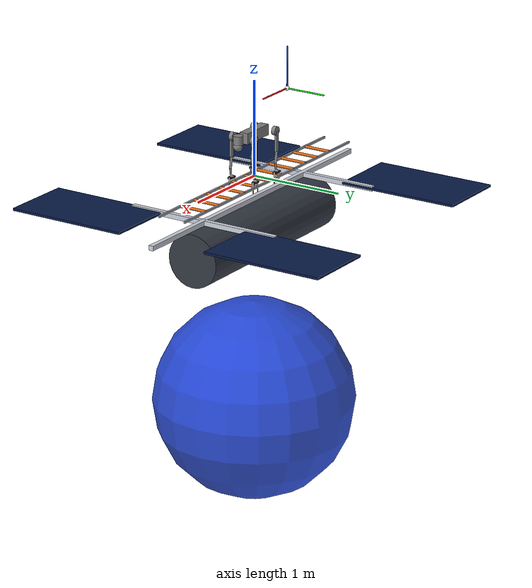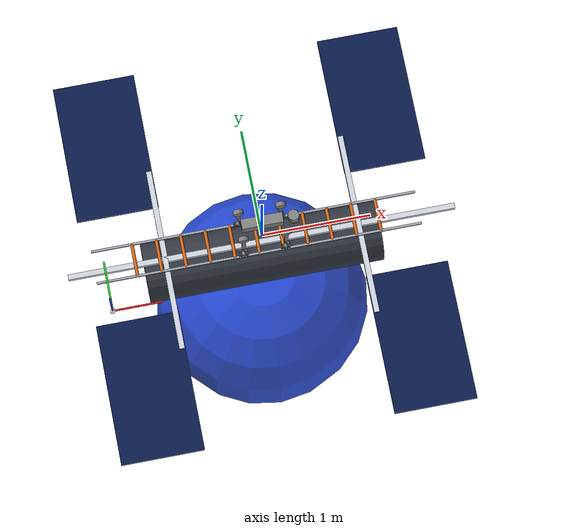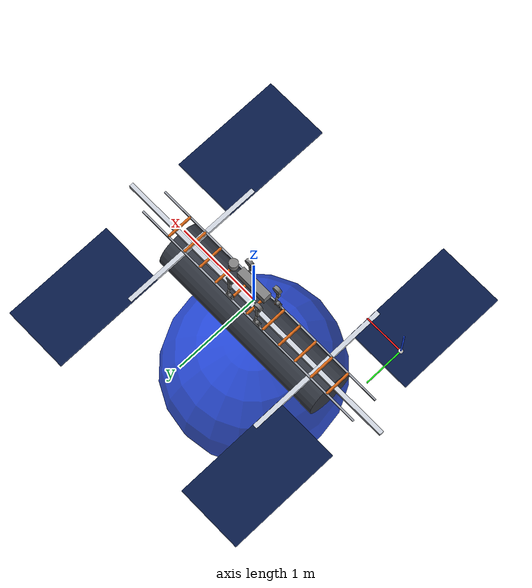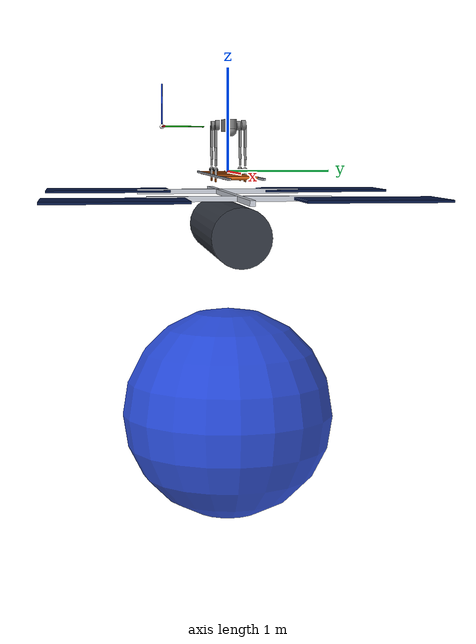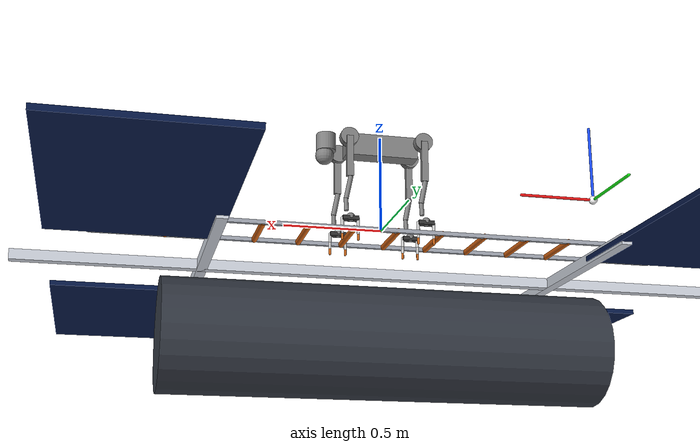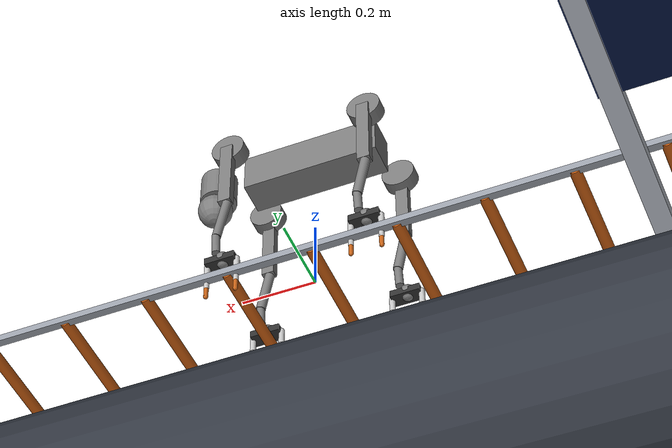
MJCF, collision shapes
<mujoco model="go2 hill-frame rung-radius r150">
  <option timestep="0.002" gravity="0 0 -7.848" cone="elliptic" impratio="100" />

  <!-- This file is intended to live in:
       ~/00Dissertation/code/hill_frame_experiment/
       and uses the local go2_hill.xml copy with meshdir="../assets". -->
  <include file="go2_hill.xml" />

  <statistic center="0 0 0.15" extent="3.5" />

  <visual>
    <headlight diffuse="0.7 0.7 0.7"
               ambient="0.25 0.25 0.25"
               specular="0.15 0.15 0.15" />
    <rgba haze="0.02 0.02 0.04 1" />
    <global azimuth="-130" elevation="-18" />
  </visual>

  <asset>
    <texture type="skybox"
             builtin="gradient"
             rgb1="0.005 0.005 0.015"
             rgb2="0 0 0"
             width="512"
             height="3072" />

    <material name="station_white" rgba="0.80 0.82 0.86 1" />
    <material name="station_dark"  rgba="0.20 0.22 0.26 1" />
    <material name="solar_blue"    rgba="0.03 0.10 0.28 1" />
    <material name="earth_blue"    rgba="0.04 0.20 0.85 0.85" />
    <material name="ladder_metal"  rgba="0.62 0.64 0.68 1" />
    <material name="rung_orange"   rgba="0.85 0.40 0.08 1" />
  </asset>

  <worldbody>
    <light pos="0 0 5" dir="0 0 -1" directional="true" />

    <!-- Overview camera for the full Hill-frame visual scene. -->
    <camera name="hill_overview"
            pos="4.2 -4.2 2.3"
            xyaxes="0.707 0.707 0  -0.265 0.265 0.927"
            mode="fixed" />

    <body name="earth_reference" pos="0 0 -2.4">
      <geom name="earth_visual"
            type="sphere"
            size="1.05"
            material="earth_blue"
            contype="0"
            conaffinity="0"
            group="0" />
    </body>

    <!-- Hill-frame visual axes. -->
    <body name="hill_frame_axes" pos="-1.45 -0.55 0.45">
      <site name="hill_origin" type="sphere" size="0.025" rgba="1 1 1 1" />
      <site name="hill_x_axis" type="capsule"
            fromto="0 0 0 0.45 0 0" size="0.008" rgba="1 0.1 0.1 1" />
      <site name="hill_y_axis" type="capsule"
            fromto="0 0 0 0 0.45 0" size="0.008" rgba="0.1 1 0.1 1" />
      <site name="hill_z_axis" type="capsule"
            fromto="0 0 0 0 0 0.45" size="0.008" rgba="0.1 0.3 1 1" />
    </body>

    <!-- Station-like visual reference inspired by the supplied image.
         It is intentionally non-colliding and does not alter robot dynamics. -->
    <body name="orbital_station_visual" pos="0 0 -0.58">
      <geom name="station_core"
            type="cylinder"
            size="0.28 1.10"
            zaxis="1 0 0"
            material="station_dark"
            contype="0"
            conaffinity="0"
            group="0" />

      <geom name="station_truss_main"
            type="box"
            size="1.80 0.025 0.025"
            pos="0 0 0.35"
            material="station_white"
            contype="0"
            conaffinity="0"
            group="0" />

      <geom name="station_truss_cross_left"
            type="box"
            size="0.025 0.85 0.025"
            pos="-0.90 0 0.35"
            material="station_white"
            contype="0"
            conaffinity="0"
            group="0" />

      <geom name="station_truss_cross_right"
            type="box"
            size="0.025 0.85 0.025"
            pos="0.90 0 0.35"
            material="station_white"
            contype="0"
            conaffinity="0"
            group="0" />

      <geom name="solar_left_front"
            type="box"
            size="0.38 0.65 0.012"
            pos="-1.25 1.15 0.35"
            material="solar_blue"
            contype="0"
            conaffinity="0"
            group="0" />

      <geom name="solar_left_back"
            type="box"
            size="0.38 0.65 0.012"
            pos="-1.25 -1.15 0.35"
            material="solar_blue"
            contype="0"
            conaffinity="0"
            group="0" />

      <geom name="solar_right_front"
            type="box"
            size="0.38 0.65 0.012"
            pos="1.25 1.15 0.35"
            material="solar_blue"
            contype="0"
            conaffinity="0"
            group="0" />

      <geom name="solar_right_back"
            type="box"
            size="0.38 0.65 0.012"
            pos="1.25 -1.15 0.35"
            material="solar_blue"
            contype="0"
            conaffinity="0"
            group="0" />
    </body>

    <!-- Physical ladder. Geometry and rung spacing are unchanged from the baseline. -->
    <body name="ladder_structure" pos="-0.05 0 0">
      <geom name="ladder_rail_front"
            type="box"
            size="1.5 0.01 0.01"
            pos="0 0.15 -0.04"
            material="ladder_metal" />

      <geom name="ladder_rail_back"
            type="box"
            size="1.5 0.01 0.01"
            pos="0 -0.15 -0.04"
            material="ladder_metal" />

      <geom name="rung_1"  type="cylinder" size="0.0150 0.15" pos="-1.125 0 -0.04" zaxis="0 1 0" material="rung_orange" />
      <geom name="rung_2"  type="cylinder" size="0.0150 0.15" pos="-0.900 0 -0.04" zaxis="0 1 0" material="rung_orange" />
      <geom name="rung_3"  type="cylinder" size="0.0150 0.15" pos="-0.675 0 -0.04" zaxis="0 1 0" material="rung_orange" />
      <geom name="rung_4"  type="cylinder" size="0.0150 0.15" pos="-0.450 0 -0.04" zaxis="0 1 0" material="rung_orange" />
      <geom name="rung_5"  type="cylinder" size="0.0150 0.15" pos="-0.225 0 -0.04" zaxis="0 1 0" material="rung_orange" />
      <geom name="rung_6"  type="cylinder" size="0.0150 0.15" pos="0.000 0 -0.04"  zaxis="0 1 0" material="rung_orange" />
      <geom name="rung_7"  type="cylinder" size="0.0150 0.15" pos="0.225 0 -0.04"  zaxis="0 1 0" material="rung_orange" />
      <geom name="rung_8"  type="cylinder" size="0.0150 0.15" pos="0.450 0 -0.04"  zaxis="0 1 0" material="rung_orange" />
      <geom name="rung_9"  type="cylinder" size="0.0150 0.15" pos="0.675 0 -0.04"  zaxis="0 1 0" material="rung_orange" />
      <geom name="rung_10" type="cylinder" size="0.0150 0.15" pos="0.900 0 -0.04"  zaxis="0 1 0" material="rung_orange" />
      <geom name="rung_11" type="cylinder" size="0.0150 0.15" pos="1.125 0 -0.04"  zaxis="0 1 0" material="rung_orange" />
    </body>
  </worldbody>
</mujoco>

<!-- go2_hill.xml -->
<mujoco model="go2">
  <compiler angle="radian" meshdir="../assets" autolimits="true"/>

  <option cone="elliptic" impratio="100"/>

  <default>
    <default class="go2">
      <geom friction="0.6" margin="0.001" condim="1"/>
      <joint axis="0 1 0" damping="2" armature="0.01" frictionloss="0.2"/>
      <motor ctrlrange="-23.7 23.7"/>
      <default class="abduction">
        <joint axis="1 0 0" range="-1.0472 1.0472"/>
      </default>
      <default class="hip">
        <default class="front_hip">
          <joint range="-1.5708 3.4907"/>
        </default>
        <default class="back_hip">
          <joint range="-0.5236 4.5379"/>
        </default>
      </default>
      <default class="knee">
        <joint range="-2.7227 -0.83776"/>
        <motor ctrlrange="-45.43 45.43"/>
      </default>
      <default class="visual">
        <geom type="mesh" contype="0" conaffinity="0" group="2"/>
      </default>
      <default class="collision">
        <geom group="3"/>
        <default class="foot">
          <geom size="0.022" pos="-0.002 0 -0.213" priority="1" solimp="0.015 1 0.022" condim="6"
            friction="0.8 0.02 0.01"/>
        </default>
      </default>
    </default>
  </default>

  <asset>
    <material name="metal" rgba=".9 .95 .95 1"/>
    <material name="black" rgba="0 0 0 1"/>
    <material name="white" rgba="1 1 1 1"/>
    <material name="gray" rgba="0.671705 0.692426 0.774270 1"/>

    <mesh file="base_0.obj"/>
    <mesh file="base_1.obj"/>
    <mesh file="base_2.obj"/>
    <mesh file="base_3.obj"/>
    <mesh file="base_4.obj"/>
    <mesh file="hip_0.obj"/>
    <mesh file="hip_1.obj"/>
    <mesh file="thigh_0.obj"/>
    <mesh file="thigh_1.obj"/>
    <mesh file="thigh_mirror_0.obj"/>
    <mesh file="thigh_mirror_1.obj"/>
    <mesh file="calf_0.obj"/>
    <mesh file="calf_1.obj"/>
    <mesh file="calf_mirror_0.obj"/>
    <mesh file="calf_mirror_1.obj"/>
    <mesh file="foot.obj"/>
  </asset>

  <worldbody>
    <body name="base" pos="0 0 0.445" childclass="go2">
      <inertial pos="0.021112 0 -0.005366" quat="-0.000543471 0.713435 -0.00173769 0.700719" mass="6.921"
        diaginertia="0.107027 0.0980771 0.0244531"/>
      <freejoint/>
      <geom mesh="base_0" material="black" class="visual"/>
      <geom mesh="base_1" material="black" class="visual"/>
      <geom mesh="base_2" material="black" class="visual"/>
      <geom mesh="base_3" material="white" class="visual"/>
      <geom mesh="base_4" material="gray" class="visual"/>
      <geom size="0.1881 0.04675 0.057" type="box" class="collision"/>
      <geom size="0.05 0.045" pos="0.285 0 0.01" type="cylinder" class="collision"/>
      <geom size="0.047" pos="0.293 0 -0.06" class="collision"/>
      <site name="imu" pos="-0.02557 0 0.04232"/>
      <body name="FL_hip" pos="0.1934 0.0465 0">
        <inertial pos="-0.0054 0.00194 -0.000105" quat="0.497014 0.499245 0.505462 0.498237" mass="0.678"
          diaginertia="0.00088403 0.000596003 0.000479967"/>
        <joint name="FL_hip_joint" class="abduction"/>
        <geom mesh="hip_0" material="metal" class="visual"/>
        <geom mesh="hip_1" material="gray" class="visual"/>
        <geom size="0.046 0.02" pos="0 0.08 0" quat="1 1 0 0" type="cylinder" class="collision"/>
        <body name="FL_thigh" pos="0 0.0955 0">
          <inertial pos="-0.00374 -0.0223 -0.0327" quat="0.829533 0.0847635 -0.0200632 0.551623" mass="1.152"
            diaginertia="0.00594973 0.00584149 0.000878787"/>
          <joint name="FL_thigh_joint" class="front_hip"/>
          <geom mesh="thigh_0" material="metal" class="visual"/>
          <geom mesh="thigh_1" material="gray" class="visual"/>
          <geom size="0.1065 0.01225 0.017" pos="0 0 -0.1065" quat="0.707107 0 0.707107 0" type="box"
            class="collision"/>
          <body name="FL_calf" pos="0 0 -0.213">
            <inertial pos="0.00629595 -0.000622121 -0.141417" quat="0.710672 0.00154099 -0.00450087 0.703508"
              mass="0.241352" diaginertia="0.0014901 0.00146356 5.31397e-05"/>
            <joint name="FL_calf_joint" class="knee"/>
            <geom mesh="calf_0" material="gray" class="visual"/>
            <geom mesh="calf_1" material="black" class="visual"/>
            <geom size="0.012 0.06" pos="0.008 0 -0.06" quat="0.994493 0 -0.104807 0" type="cylinder"
              class="collision"/>
            <geom size="0.011 0.0325" pos="0.02 0 -0.148" quat="0.999688 0 0.0249974 0" type="cylinder"
              class="collision"/>
            <geom pos="0 0 -0.213" mesh="foot" class="visual" material="black"/>
            <geom name="FL" class="foot"/>

            <body name="FL_gripper_palm" pos="0 0 -0.22" quat="1 0 0 0">
              <geom name="fl_palm_v" type="box" size="0.04 0.02 0.01" rgba="0.2 0.2 0.2 1" class="visual"/>
              <body name="fl_finger_L1" pos="0.04 0 0">
                <joint name="fl_g_L1_j" type="hinge" axis="0 1 0" range="0 1.57" damping="0.1" frictionloss="0.01" armature="0.001"/>
                <geom type="capsule" size="0.008 0.02" pos="0 0 -0.02" quat="1 0 0 0" rgba="0.8 0.8 0.8 1"/>
                <body name="fl_finger_L2" pos="0 0 -0.04">
                  <joint name="fl_g_L2_j" type="hinge" axis="0 1 0" range="0 1.57" damping="0.1" frictionloss="0.01" armature="0.001"/>
                  <geom type="capsule" size="0.007 0.018" pos="0 0 -0.018" quat="1 0 0 0" rgba="0.8 0.8 0.8 1"/>
                  <body name="fl_finger_L3" pos="0 0 -0.036">
                    <joint name="fl_g_L3_j" type="hinge" axis="0 1 0" range="0 1.57" damping="0.1" frictionloss="0.01" armature="0.001"/>
                    <geom type="capsule" size="0.006 0.015" pos="0 0 -0.015" quat="1 0 0 0" rgba="0.8 0.4 0.1 1"/>
                  </body>
                </body>
              </body>
              <body name="fl_finger_R1" pos="-0.04 0 0">
                <joint name="fl_g_R1_j" type="hinge" axis="0 -1 0" range="0 1.57" damping="0.1" frictionloss="0.01" armature="0.001"/>
                <geom type="capsule" size="0.008 0.02" pos="0 0 -0.02" quat="1 0 0 0" rgba="0.8 0.8 0.8 1"/>
                <body name="fl_finger_R2" pos="0 0 -0.04">
                  <joint name="fl_g_R2_j" type="hinge" axis="0 -1 0" range="0 1.57" damping="0.1" frictionloss="0.01" armature="0.001"/>
                  <geom type="capsule" size="0.007 0.018" pos="0 0 -0.018" quat="1 0 0 0" rgba="0.8 0.8 0.8 1"/>
                  <body name="fl_finger_R3" pos="0 0 -0.036">
                    <joint name="fl_g_R3_j" type="hinge" axis="0 -1 0" range="0 1.57" damping="0.1" frictionloss="0.01" armature="0.001"/>
                    <geom type="capsule" size="0.006 0.015" pos="0 0 -0.015" quat="1 0 0 0" rgba="0.8 0.4 0.1 1"/>
                  </body>
                </body>
              </body>
            </body>

          </body>
        </body>
      </body>
      <body name="FR_hip" pos="0.1934 -0.0465 0">
        <inertial pos="-0.0054 -0.00194 -0.000105" quat="0.498237 0.505462 0.499245 0.497014" mass="0.678"
          diaginertia="0.00088403 0.000596003 0.000479967"/>
        <joint name="FR_hip_joint" class="abduction"/>
        <geom mesh="hip_0" material="metal" class="visual" quat="4.63268e-05 1 0 0"/>
        <geom mesh="hip_1" material="gray" class="visual" quat="4.63268e-05 1 0 0"/>
        <geom size="0.046 0.02" pos="0 -0.08 0" quat="0.707107 0.707107 0 0" type="cylinder" class="collision"/>
        <body name="FR_thigh" pos="0 -0.0955 0">
          <inertial pos="-0.00374 0.0223 -0.0327" quat="0.551623 -0.0200632 0.0847635 0.829533" mass="1.152"
            diaginertia="0.00594973 0.00584149 0.000878787"/>
          <joint name="FR_thigh_joint" class="front_hip"/>
          <geom mesh="thigh_mirror_0" material="metal" class="visual"/>
          <geom mesh="thigh_mirror_1" material="gray" class="visual"/>
          <geom size="0.1065 0.01225 0.017" pos="0 0 -0.1065" quat="0.707107 0 0.707107 0" type="box"
            class="collision"/>
          <body name="FR_calf" pos="0 0 -0.213">
            <inertial pos="0.00629595 0.000622121 -0.141417" quat="0.703508 -0.00450087 0.00154099 0.710672"
              mass="0.241352" diaginertia="0.0014901 0.00146356 5.31397e-05"/>
            <joint name="FR_calf_joint" class="knee"/>
            <geom mesh="calf_mirror_0" material="gray" class="visual"/>
            <geom mesh="calf_mirror_1" material="black" class="visual"/>
            <geom size="0.013 0.06" pos="0.01 0 -0.06" quat="0.995004 0 -0.0998334 0" type="cylinder"
              class="collision"/>
            <geom size="0.011 0.0325" pos="0.02 0 -0.148" quat="0.999688 0 0.0249974 0" type="cylinder"
              class="collision"/>
            <geom pos="0 0 -0.213" mesh="foot" class="visual" material="black"/>
            <geom name="FR" class="foot"/>

            <body name="FR_gripper_palm" pos="0 0 -0.22" quat="1 0 0 0">
              <geom name="fr_palm_v" type="box" size="0.04 0.02 0.01" rgba="0.2 0.2 0.2 1" class="visual"/>
              <body name="fr_finger_L1" pos="0.04 0 0">
                <joint name="fr_g_L1_j" type="hinge" axis="0 1 0" range="0 1.57" damping="0.1" frictionloss="0.01" armature="0.001"/>
                <geom type="capsule" size="0.008 0.02" pos="0 0 -0.02" quat="1 0 0 0" rgba="0.8 0.8 0.8 1"/>
                <body name="fr_finger_L2" pos="0 0 -0.04">
                  <joint name="fr_g_L2_j" type="hinge" axis="0 1 0" range="0 1.57" damping="0.1" frictionloss="0.01" armature="0.001"/>
                  <geom type="capsule" size="0.007 0.018" pos="0 0 -0.018" quat="1 0 0 0" rgba="0.8 0.8 0.8 1"/>
                  <body name="fr_finger_L3" pos="0 0 -0.036">
                    <joint name="fr_g_L3_j" type="hinge" axis="0 1 0" range="0 1.57" damping="0.1" frictionloss="0.01" armature="0.001"/>
                    <geom type="capsule" size="0.006 0.015" pos="0 0 -0.015" quat="1 0 0 0" rgba="0.8 0.4 0.1 1"/>
                  </body>
                </body>
              </body>
              <body name="fr_finger_R1" pos="-0.04 0 0">
                <joint name="fr_g_R1_j" type="hinge" axis="0 -1 0" range="0 1.57" damping="0.1" frictionloss="0.01" armature="0.001"/>
                <geom type="capsule" size="0.008 0.02" pos="0 0 -0.02" quat="1 0 0 0" rgba="0.8 0.8 0.8 1"/>
                <body name="fr_finger_R2" pos="0 0 -0.04">
                  <joint name="fr_g_R2_j" type="hinge" axis="0 -1 0" range="0 1.57" damping="0.1" frictionloss="0.01" armature="0.001"/>
                  <geom type="capsule" size="0.007 0.018" pos="0 0 -0.018" quat="1 0 0 0" rgba="0.8 0.8 0.8 1"/>
                  <body name="fr_finger_R3" pos="0 0 -0.036">
                    <joint name="fr_g_R3_j" type="hinge" axis="0 -1 0" range="0 1.57" damping="0.1" frictionloss="0.01" armature="0.001"/>
                    <geom type="capsule" size="0.006 0.015" pos="0 0 -0.015" quat="1 0 0 0" rgba="0.8 0.4 0.1 1"/>
                  </body>
                </body>
              </body>
            </body>

          </body>
        </body>
      </body>
      <body name="RL_hip" pos="-0.1934 0.0465 0">
        <inertial pos="0.0054 0.00194 -0.000105" quat="0.505462 0.498237 0.497014 0.499245" mass="0.678"
          diaginertia="0.00088403 0.000596003 0.000479967"/>
        <joint name="RL_hip_joint" class="abduction"/>
        <geom mesh="hip_0" material="metal" class="visual" quat="4.63268e-05 0 1 0"/>
        <geom mesh="hip_1" material="gray" class="visual" quat="4.63268e-05 0 1 0"/>
        <geom size="0.046 0.02" pos="0 0.08 0" quat="0.707107 0.707107 0 0" type="cylinder" class="collision"/>
        <body name="RL_thigh" pos="0 0.0955 0">
          <inertial pos="-0.00374 -0.0223 -0.0327" quat="0.829533 0.0847635 -0.0200632 0.551623" mass="1.152"
            diaginertia="0.00594973 0.00584149 0.000878787"/>
          <joint name="RL_thigh_joint" class="back_hip"/>
          <geom mesh="thigh_0" material="metal" class="visual"/>
          <geom mesh="thigh_1" material="gray" class="visual"/>
          <geom size="0.1065 0.01225 0.017" pos="0 0 -0.1065" quat="0.707107 0 0.707107 0" type="box"
            class="collision"/>
          <body name="RL_calf" pos="0 0 -0.213">
            <inertial pos="0.00629595 -0.000622121 -0.141417" quat="0.710672 0.00154099 -0.00450087 0.703508"
              mass="0.241352" diaginertia="0.0014901 0.00146356 5.31397e-05"/>
            <joint name="RL_calf_joint" class="knee"/>
            <geom mesh="calf_0" material="gray" class="visual"/>
            <geom mesh="calf_1" material="black" class="visual"/>
            <geom size="0.013 0.06" pos="0.01 0 -0.06" quat="0.995004 0 -0.0998334 0" type="cylinder"
              class="collision"/>
            <geom size="0.011 0.0325" pos="0.02 0 -0.148" quat="0.999688 0 0.0249974 0" type="cylinder"
              class="collision"/>
            <geom pos="0 0 -0.213" mesh="foot" class="visual" material="black"/>
            <geom name="RL" class="foot"/>

            <body name="RL_gripper_palm" pos="0 0 -0.22" quat="1 0 0 0">
              <geom name="rl_palm_v" type="box" size="0.04 0.02 0.01" rgba="0.2 0.2 0.2 1" class="visual"/>
              <body name="rl_finger_L1" pos="0.04 0 0">
                <joint name="rl_g_L1_j" type="hinge" axis="0 1 0" range="0 1.57" damping="0.1" frictionloss="0.01" armature="0.001"/>
                <geom type="capsule" size="0.008 0.02" pos="0 0 -0.02" quat="1 0 0 0" rgba="0.8 0.8 0.8 1"/>
                <body name="rl_finger_L2" pos="0 0 -0.04">
                  <joint name="rl_g_L2_j" type="hinge" axis="0 1 0" range="0 1.57" damping="0.1" frictionloss="0.01" armature="0.001"/>
                  <geom type="capsule" size="0.007 0.018" pos="0 0 -0.018" quat="1 0 0 0" rgba="0.8 0.8 0.8 1"/>
                  <body name="rl_finger_L3" pos="0 0 -0.036">
                    <joint name="rl_g_L3_j" type="hinge" axis="0 1 0" range="0 1.57" damping="0.1" frictionloss="0.01" armature="0.001"/>
                    <geom type="capsule" size="0.006 0.015" pos="0 0 -0.015" quat="1 0 0 0" rgba="0.8 0.4 0.1 1"/>
                  </body>
                </body>
              </body>
              <body name="rl_finger_R1" pos="-0.04 0 0">
                <joint name="rl_g_R1_j" type="hinge" axis="0 -1 0" range="0 1.57" damping="0.1" frictionloss="0.01" armature="0.001"/>
                <geom type="capsule" size="0.008 0.02" pos="0 0 -0.02" quat="1 0 0 0" rgba="0.8 0.8 0.8 1"/>
                <body name="rl_finger_R2" pos="0 0 -0.04">
                  <joint name="rl_g_R2_j" type="hinge" axis="0 -1 0" range="0 1.57" damping="0.1" frictionloss="0.01" armature="0.001"/>
                  <geom type="capsule" size="0.007 0.018" pos="0 0 -0.018" quat="1 0 0 0" rgba="0.8 0.8 0.8 1"/>
                  <body name="rl_finger_R3" pos="0 0 -0.036">
                    <joint name="rl_g_R3_j" type="hinge" axis="0 -1 0" range="0 1.57" damping="0.1" frictionloss="0.01" armature="0.001"/>
                    <geom type="capsule" size="0.006 0.015" pos="0 0 -0.015" quat="1 0 0 0" rgba="0.8 0.4 0.1 1"/>
                  </body>
                </body>
              </body>
            </body>

          </body>
        </body>
      </body>
      <body name="RR_hip" pos="-0.1934 -0.0465 0">
        <inertial pos="0.0054 -0.00194 -0.000105" quat="0.499245 0.497014 0.498237 0.505462" mass="0.678"
          diaginertia="0.00088403 0.000596003 0.000479967"/>
        <joint name="RR_hip_joint" class="abduction"/>
        <geom mesh="hip_0" material="metal" class="visual" quat="2.14617e-09 4.63268e-05 4.63268e-05 -1"/>
        <geom mesh="hip_1" material="gray" class="visual" quat="2.14617e-09 4.63268e-05 4.63268e-05 -1"/>
        <geom size="0.046 0.02" pos="0 -0.08 0" quat="0.707107 0.707107 0 0" type="cylinder" class="collision"/>
        <body name="RR_thigh" pos="0 -0.0955 0">
          <inertial pos="-0.00374 0.0223 -0.0327" quat="0.551623 -0.0200632 0.0847635 0.829533" mass="1.152"
            diaginertia="0.00594973 0.00584149 0.000878787"/>
          <joint name="RR_thigh_joint" class="back_hip"/>
          <geom mesh="thigh_mirror_0" material="metal" class="visual"/>
          <geom mesh="thigh_mirror_1" material="gray" class="visual"/>
          <geom size="0.1065 0.01225 0.017" pos="0 0 -0.1065" quat="0.707107 0 0.707107 0" type="box"
            class="collision"/>
          <body name="RR_calf" pos="0 0 -0.213">
            <inertial pos="0.00629595 0.000622121 -0.141417" quat="0.703508 -0.00450087 0.00154099 0.710672"
              mass="0.241352" diaginertia="0.0014901 0.00146356 5.31397e-05"/>
            <joint name="RR_calf_joint" class="knee"/>
            <geom mesh="calf_mirror_0" material="gray" class="visual"/>
            <geom mesh="calf_mirror_1" material="black" class="visual"/>
            <geom size="0.013 0.06" pos="0.01 0 -0.06" quat="0.995004 0 -0.0998334 0" type="cylinder"
              class="collision"/>
            <geom size="0.011 0.0325" pos="0.02 0 -0.148" quat="0.999688 0 0.0249974 0" type="cylinder"
              class="collision"/>
            <geom pos="0 0 -0.213" mesh="foot" class="visual" material="black"/>
            <geom name="RR" class="foot"/>

            <body name="RR_gripper_palm" pos="0 0 -0.22" quat="1 0 0 0">
              <geom name="rr_palm_v" type="box" size="0.04 0.02 0.01" rgba="0.2 0.2 0.2 1" class="visual"/>
              <body name="rr_finger_L1" pos="0.04 0 0">
                <joint name="rr_g_L1_j" type="hinge" axis="0 1 0" range="0 1.57" damping="0.1" frictionloss="0.01" armature="0.001"/>
                <geom type="capsule" size="0.008 0.02" pos="0 0 -0.02" quat="1 0 0 0" rgba="0.8 0.8 0.8 1"/>
                <body name="rr_finger_L2" pos="0 0 -0.04">
                  <joint name="rr_g_L2_j" type="hinge" axis="0 1 0" range="0 1.57" damping="0.1" frictionloss="0.01" armature="0.001"/>
                  <geom type="capsule" size="0.007 0.018" pos="0 0 -0.018" quat="1 0 0 0" rgba="0.8 0.8 0.8 1"/>
                  <body name="rr_finger_L3" pos="0 0 -0.036">
                    <joint name="rr_g_L3_j" type="hinge" axis="0 1 0" range="0 1.57" damping="0.1" frictionloss="0.01" armature="0.001"/>
                    <geom type="capsule" size="0.006 0.015" pos="0 0 -0.015" quat="1 0 0 0" rgba="0.8 0.4 0.1 1"/>
                  </body>
                </body>
              </body>
              <body name="rr_finger_R1" pos="-0.04 0 0">
                <joint name="rr_g_R1_j" type="hinge" axis="0 -1 0" range="0 1.57" damping="0.1" frictionloss="0.01" armature="0.001"/>
                <geom type="capsule" size="0.008 0.02" pos="0 0 -0.02" quat="1 0 0 0" rgba="0.8 0.8 0.8 1"/>
                <body name="rr_finger_R2" pos="0 0 -0.04">
                  <joint name="rr_g_R2_j" type="hinge" axis="0 -1 0" range="0 1.57" damping="0.1" frictionloss="0.01" armature="0.001"/>
                  <geom type="capsule" size="0.007 0.018" pos="0 0 -0.018" quat="1 0 0 0" rgba="0.8 0.8 0.8 1"/>
                  <body name="rr_finger_R3" pos="0 0 -0.036">
                    <joint name="rr_g_R3_j" type="hinge" axis="0 -1 0" range="0 1.57" damping="0.1" frictionloss="0.01" armature="0.001"/>
                    <geom type="capsule" size="0.006 0.015" pos="0 0 -0.015" quat="1 0 0 0" rgba="0.8 0.4 0.1 1"/>
                  </body>
                </body>
              </body>
            </body>

          </body>
        </body>
      </body>
    </body>
  </worldbody>

  <actuator>
    <motor class="abduction" name="FL_hip" joint="FL_hip_joint"/>
    <motor class="hip" name="FL_thigh" joint="FL_thigh_joint"/>
    <motor class="knee" name="FL_calf" joint="FL_calf_joint"/>
    <motor class="abduction" name="FR_hip" joint="FR_hip_joint"/>
    <motor class="hip" name="FR_thigh" joint="FR_thigh_joint"/>
    <motor class="knee" name="FR_calf" joint="FR_calf_joint"/>
    <motor class="abduction" name="RL_hip" joint="RL_hip_joint"/>
    <motor class="hip" name="RL_thigh" joint="RL_thigh_joint"/>
    <motor class="knee" name="RL_calf" joint="RL_calf_joint"/>
    <motor class="abduction" name="RR_hip" joint="RR_hip_joint"/>
    <motor class="hip" name="RR_thigh" joint="RR_thigh_joint"/>
    <motor class="knee" name="RR_calf" joint="RR_calf_joint"/>

    <motor name="fl_gripper_L1" joint="fl_g_L1_j" ctrlrange="-5 5"/>
    <motor name="fl_gripper_L2" joint="fl_g_L2_j" ctrlrange="-5 5"/>
    <motor name="fl_gripper_L3" joint="fl_g_L3_j" ctrlrange="-5 5"/>
    <motor name="fl_gripper_R1" joint="fl_g_R1_j" ctrlrange="-5 5"/>
    <motor name="fl_gripper_R2" joint="fl_g_R2_j" ctrlrange="-5 5"/>
    <motor name="fl_gripper_R3" joint="fl_g_R3_j" ctrlrange="-5 5"/>

    <motor name="fr_gripper_L1" joint="fr_g_L1_j" ctrlrange="-5 5"/>
    <motor name="fr_gripper_L2" joint="fr_g_L2_j" ctrlrange="-5 5"/>
    <motor name="fr_gripper_L3" joint="fr_g_L3_j" ctrlrange="-5 5"/>
    <motor name="fr_gripper_R1" joint="fr_g_R1_j" ctrlrange="-5 5"/>
    <motor name="fr_gripper_R2" joint="fr_g_R2_j" ctrlrange="-5 5"/>
    <motor name="fr_gripper_R3" joint="fr_g_R3_j" ctrlrange="-5 5"/>

    <motor name="rl_gripper_L1" joint="rl_g_L1_j" ctrlrange="-5 5"/>
    <motor name="rl_gripper_L2" joint="rl_g_L2_j" ctrlrange="-5 5"/>
    <motor name="rl_gripper_L3" joint="rl_g_L3_j" ctrlrange="-5 5"/>
    <motor name="rl_gripper_R1" joint="rl_g_R1_j" ctrlrange="-5 5"/>
    <motor name="rl_gripper_R2" joint="rl_g_R2_j" ctrlrange="-5 5"/>
    <motor name="rl_gripper_R3" joint="rl_g_R3_j" ctrlrange="-5 5"/>

    <motor name="rr_gripper_L1" joint="rr_g_L1_j" ctrlrange="-5 5"/>
    <motor name="rr_gripper_L2" joint="rr_g_L2_j" ctrlrange="-5 5"/>
    <motor name="rr_gripper_L3" joint="rr_g_L3_j" ctrlrange="-5 5"/>
    <motor name="rr_gripper_R1" joint="rr_g_R1_j" ctrlrange="-5 5"/>
    <motor name="rr_gripper_R2" joint="rr_g_R2_j" ctrlrange="-5 5"/>
    <motor name="rr_gripper_R3" joint="rr_g_R3_j" ctrlrange="-5 5"/>
  </actuator>
</mujoco>
